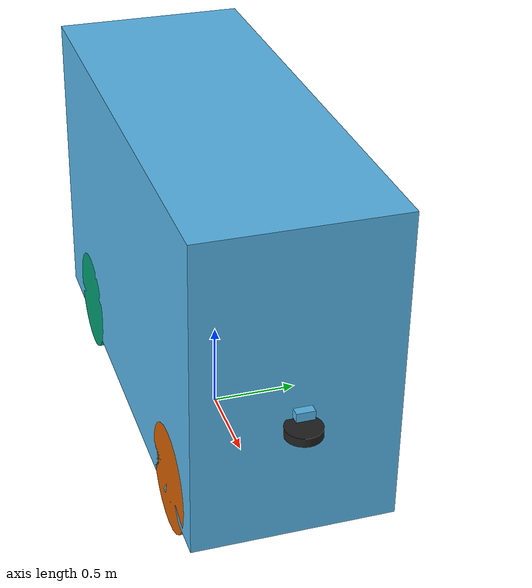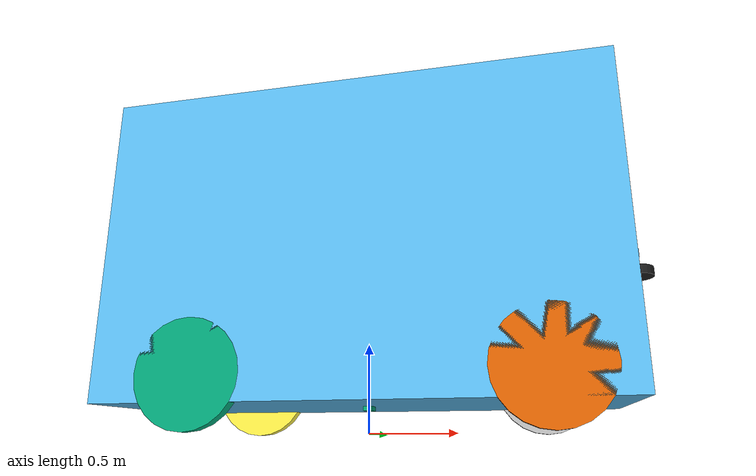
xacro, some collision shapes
<?xml version="1.0"?>
<robot name="robotaksi" xmlns:xacro="http://www.ros.org/wiki/xacro">

    <xacro:include filename="common_properties.xacro" />

    <xacro:property name="base_length" value="2.85" />
    <xacro:property name="base_width" value="1.11" />
    <xacro:property name="base_height" value="1.78" />
    <xacro:property name="base_radius" value="0.3" />
    <xacro:property name="wheel_length" value="0.07" />
    <xacro:property name="wheel_z_offset" value="0.15" />
    <xacro:property name="rear_wheel_x_offset" value="0.865" />
    <xacro:property name="front_wheel_x_offset" value="1.0" />

    <link name="base_footprint" />

    <link name="base_link">
        <visual>
            <geometry>
                <mesh filename="package://robotaksi_autonomous_car/meshes/robotaksi.dae" />
            </geometry>
            <origin xyz="0 0 ${base_height / 2.0}" rpy="0 0 0" />
        </visual>
        <xacro:box_inertia m="250.0" l="${base_length}" w="${base_width}" h="${base_height}"
            xyz="0 0 ${base_height / 2.0}" rpy="${pi / 2.0} 0 ${pi / 2.0}" />
        <collision>
            <geometry>
                <box size="${base_length} ${base_width} ${base_height}" />
            </geometry>
            <origin xyz="0 0 ${base_height / 2.0}" rpy="0 0 0" />
        </collision>
    </link>

    <link name="rear_right_axle">
        <visual>
            <geometry>
                <cylinder radius="${base_radius}" length="${wheel_length}" />
            </geometry>
            <origin xyz="0 0 0" rpy="${pi / 2.0} 0 0" />
        </visual>
        <xacro:cylinder_inertia m="50" r="${base_radius}" l="${wheel_length}"
            xyz="0 0 0" rpy="${pi / 2.0} 0 0" />

        <collision>
            <geometry>
                <cylinder radius="${base_radius}" length="${wheel_length}" />
            </geometry>
            <origin xyz="0 0 0" rpy="${pi / 2.0} 0 0" />
        </collision>
    </link>

    <link name="rear_left_axle">
        <visual>
            <geometry>
                <cylinder radius="${base_radius}" length="${wheel_length}" />
            </geometry>
            <origin xyz="0 0 0" rpy="${pi / 2.0} 0 0" />
        </visual>
        <xacro:cylinder_inertia m="50" r="${base_radius}" l="${wheel_length}"
            xyz="0 0 0" rpy="${pi / 2.0} 0 0" />

        <collision>
            <geometry>
                <cylinder radius="${base_radius}" length="${wheel_length}" />
            </geometry>
            <origin xyz="0 0 0" rpy="${pi / 2.0} 0 0" />
        </collision>
    </link>

    <link name="front_right_steer">
        <inertial>
            <origin rpy="0 0 0" xyz="0.003381 1.5929e-07 0.02162" />
            <mass value="1" />
            <inertia ixx="1.0" ixy="0.0" ixz="0.0" iyy="1.0" iyz="0.0" izz="1.0" />
        </inertial>
    </link>

    <link name="front_right_axle">
        <visual>
            <geometry>
                <cylinder radius="${base_radius}" length="${wheel_length}" />
            </geometry>
            <origin xyz="0 0 0" rpy="${pi / 2.0} 0 0" />
        </visual>
        <xacro:cylinder_inertia m="50" r="${base_radius}" l="${wheel_length}"
            xyz="0 0 0" rpy="${pi / 2.0} 0 0" />

        <collision>
            <geometry>
                <cylinder radius="${base_radius}" length="${wheel_length}" />
            </geometry>
            <origin xyz="0 0 0" rpy="${pi / 2.0} 0 0" />
        </collision>
    </link>

    <link name="front_left_steer">
        <inertial>
            <origin rpy="0 0 0" xyz="0.003381 1.5929e-07 0.02162" />
            <mass value="1" />
            <inertia ixx="1.0" ixy="0.0" ixz="0.0" iyy="1.0" iyz="0.0" izz="1.0" />
        </inertial>
    </link>

    <link name="front_left_axle">
        <visual>
            <geometry>
                <cylinder radius="${base_radius}" length="${wheel_length}" />
            </geometry>
            <origin xyz="0 0 0" rpy="${pi / 2.0} 0 0" />
        </visual>

        <xacro:cylinder_inertia m="50" r="${base_radius}" l="${wheel_length}"
            xyz="0 0 0" rpy="${pi / 2.0} 0 0" />

        <collision>
            <geometry>
                <cylinder radius="${base_radius}" length="${wheel_length}" />
            </geometry>
            <origin xyz="0 0 0" rpy="${pi / 2.0} 0 0" />
        </collision>
    </link>

    <joint name="base_joint" type="fixed">
        <parent link="base_footprint" />
        <child link="base_link" />
        <origin xyz="0 0 ${base_radius-wheel_z_offset}" rpy="0 0 0" />
    </joint>

    <joint name="rear_right_axle_joint" type="continuous">
        <parent link="base_link" />
        <child link="rear_right_axle" />
        <origin
            xyz="${-rear_wheel_x_offset} ${-(base_width / 2.0) + (wheel_length / 2.0)} ${wheel_z_offset}"
            rpy="0 0 0" />
        <axis xyz="0 1 0" />
    </joint>

    <joint name="rear_left_axle_joint" type="continuous">
        <parent link="base_link" />
        <child link="rear_left_axle" />
        <origin
            xyz="${-rear_wheel_x_offset} ${(base_width / 2.0) - (wheel_length / 2.0)} ${wheel_z_offset}"
            rpy="0 0 0" />
        <axis xyz="0 1 0" />
    </joint>

    <joint name="front_right_steer_joint" type="continuous">
        <parent link="base_link" />
        <child link="front_right_steer" />
        <origin
            xyz="${front_wheel_x_offset} ${-(base_width / 2.0) + (wheel_length / 2.0)} ${wheel_z_offset}"
            rpy="0 0 0" />
        <axis xyz="0 0 1" />
    </joint>

    <joint name="front_right_axle_joint" type="continuous">
        <parent link="front_right_steer" />
        <child link="front_right_axle" />
        <origin xyz="0 0 0" rpy="0 0 0" />
        <axis xyz="0 1 0" />
    </joint>

    <joint name="front_left_steer_joint" type="continuous">
        <parent link="base_link" />
        <child link="front_left_steer" />
        <origin
            xyz="${front_wheel_x_offset} ${(base_width / 2.0) - (wheel_length / 2.0)} ${wheel_z_offset}"
            rpy="0 0 0" />
        <axis xyz="0 0 1" />
    </joint>

    <joint name="front_left_axle_joint" type="continuous">
        <parent link="front_left_steer" />
        <child link="front_left_axle" />
        <origin xyz="0 0 0" rpy="0 0 0" />
        <axis xyz="0 1 0" />
    </joint>

    <xacro:include filename="robotaksi_gazebo.xacro" />
    <xacro:include filename="ray.xacro" />
    <xacro:include filename="camera.xacro" />
    <xacro:include filename="depth.xacro" />
    <xacro:include filename="gps.xacro" />
    <xacro:include filename="imu.xacro" />
    <xacro:include filename="mag.xacro" />

</robot>

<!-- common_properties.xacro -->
<robot xmlns:xacro="http://www.ros.org/wiki/xacro">

    <xacro:macro name="box_inertia" params="m l w h xyz rpy">
        <inertial>
            <origin xyz="${xyz}" rpy="${rpy}"/>
            <mass value="${m}"/>

            <inertia ixx="${(m/12) * (h*h + l*l)}" ixy="0" ixz="0"
                     iyy="${(m/12) * (w*w + l*l)}" iyz="0"
                     izz="${(m/12) * (w*w + h*h)}"/>
        </inertial>
    </xacro:macro>

    <xacro:macro name="sphere_inertia" params="m r xyz rpy">
        <inertial>
            <origin xyz="${xyz}" rpy="${rpy}"/>
            <mass value="${m}"/>

            <inertia ixx="${(2*m/5) * (r*r)}" ixy="0" ixz="0"
                     iyy="${(2*m/5) * (r*r)}" iyz="0"
                     izz="${(2*m/5) * (r*r)}"/>
        </inertial>
    </xacro:macro>

    <xacro:macro name="cylinder_inertia" params="m r l xyz rpy">
        <inertial>
            <origin xyz="${xyz}" rpy="${rpy}"/>
            <mass value="${m}"/>

            <inertia ixx="${(m/12) * ((3*r*r) + (l*l))}" ixy="0" ixz="0"
                     iyy="${(m/12) * ((3*r*r) + (l*l))}" iyz="0"
                     izz="${(m/2) * (r*r)}"/>
        </inertial>
    </xacro:macro>
</robot>

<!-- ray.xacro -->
<robot xmlns:xacro="http://www.ros.org/wiki/xacro">

    <link name="base_scan">
        <visual>
            <origin xyz="0 0 0.0" rpy="0 0 0" />
            <geometry>
                <cylinder length="0.05" radius="0.1" />
            </geometry>
        </visual>

        <collision>
            <origin xyz="0 0 0" rpy="0 0 0" />
            <geometry>
                <cylinder length="0.05" radius="0.1" />
            </geometry>
        </collision>

        <inertial>
            <mass value="0.114" />
            <origin xyz="0 0 0" rpy="0 0 0" />
            <inertia ixx="0.001" ixy="0.0" ixz="0.0"
                iyy="0.001" iyz="0.0"
                izz="0.001" />
        </inertial>
    </link>

    <joint name="scan_joint" type="fixed">
        <parent link="base_link" />
        <child link="base_scan" />
        <origin xyz="1.5 0 0.7" rpy="0 0 0" />
    </joint>

    <gazebo reference="base_scan">
        <material>Gazebo/FlatBlack</material>
        <sensor name='base_scan' type='gpu_lidar'>
            <gz_frame_id>base_scan</gz_frame_id>
            <topic>scan</topic>
            <update_rate>100</update_rate>
            <lidar>
                <scan>
                    <horizontal>
                        <samples>640</samples>
                        <resolution>1</resolution>
                        <min_angle>-1.396263</min_angle>
                        <max_angle>1.396263</max_angle>
                    </horizontal>
                    <vertical>
                        <samples>16</samples>
                        <resolution>1</resolution>
                        <min_angle>-0.261799</min_angle>
                        <max_angle>0.261799</max_angle>
                    </vertical>
                </scan>
                <range>
                    <min>0.08</min>
                    <max>10.0</max>
                    <resolution>0.01</resolution>
                </range>
            </lidar>
            <alwaysOn>1</alwaysOn>
            <visualize>true</visualize>
        </sensor>
    </gazebo>

</robot>

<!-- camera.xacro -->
<robot xmlns:xacro="http://www.ros.org/wiki/xacro">

    <link name='camera_link'>
        <visual name='visual'>
            <origin xyz="0 0 0.0" rpy="0 0 0" />
            <geometry>
                <box size="0.05 0.1 0.05" />
            </geometry>
        </visual>

        <collision>
            <origin xyz="0 0 0" rpy="0 0 0" />
            <geometry>
                <box size="0.1 0.1 0.1" />
            </geometry>
        </collision>

        <inertial>
            <mass value="0.1" />
            <origin xyz="0 0 0" rpy="0 0 0" />
            <inertia ixx="0.001" ixy="0.0" ixz="0.0" iyy="0.001" iyz="0.0" izz="0.001" />
        </inertial>
    </link>

    <joint name="camera_joint" type="fixed">
        <parent link="base_link" />
        <child link="camera_link" />
        <origin xyz="1.5 0 0.8" rpy="0 0 0" />
    </joint>

    <gazebo reference="camera_link">
        <sensor name="camera" type="camera">
            <gz_frame_id>camera_link</gz_frame_id>
            <camera>
                <horizontal_fov>1.91986</horizontal_fov>
                <image>
                  <width>672</width>
                  <height>376</height>
                </image>
                <clip>
                  <near>0.3</near>
                  <far>130</far>
                </clip>
              </camera>
              <always_on>1</always_on>
              <update_rate>100</update_rate>
              <visualize>true</visualize>
              <topic>camera</topic>
        </sensor>
    </gazebo>

</robot>

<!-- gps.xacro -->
<robot xmlns:xacro="http://www.ros.org/wiki/xacro">

    <link name='gps_link'>
        <visual name='visual'>
            <origin xyz="0 0 0.0" rpy="0 0 0" />
            <geometry>
                <box size="0.05 0.1 0.05" />
            </geometry>
        </visual>

        <collision>
            <origin xyz="0 0 0" rpy="0 0 0" />
            <geometry>
                <box size="0.1 0.1 0.1" />
            </geometry>
        </collision>

        <inertial>
            <mass value="0.1" />
            <origin xyz="0 0 0" rpy="0 0 0" />
            <inertia ixx="0.001" ixy="0.0" ixz="0.0" iyy="0.001" iyz="0.0" izz="0.001" />
        </inertial>
    </link>

    <joint name="gps_joint" type="fixed">
        <parent link="base_link" />
        <child link="gps_link" />
        <origin xyz="0 0 0" rpy="0 0 0" />
    </joint>

    <gazebo reference="gps_link">
        <sensor name="gps_sensor" type="navsat">
            <!-- ensure the sensor is active (required) -->
            <gz_frame_id>gps_link</gz_frame_id>
            <always_on>1</always_on>
            <update_rate>15</update_rate>
            <topic>gps/fix</topic>
            <gps>
                <position_sensing>
                  <horizontal>
                    <noise type="gaussian">
                      <mean>0.0</mean>
                      <stddev>0.0</stddev>
                    </noise>
                  </horizontal>
                  <vertical>
                    <noise type="gaussian">
                      <mean>0.0</mean>
                      <stddev>0.0</stddev>
                    </noise>
                  </vertical>
                </position_sensing>
              </gps>
          </sensor>
    </gazebo>

</robot>

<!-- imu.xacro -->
<robot xmlns:xacro="http://www.ros.org/wiki/xacro">

    <link name='imu_link'>
        <visual name='visual'>
            <origin xyz="0 0 0.0" rpy="0 0 0" />
            <geometry>
                <box size="0.05 0.1 0.05" />
            </geometry>
        </visual>

        <collision>
            <origin xyz="0 0 0" rpy="0 0 0" />
            <geometry>
                <box size="0.1 0.1 0.1" />
            </geometry>
        </collision>

        <inertial>
            <mass value="0.1" />
            <origin xyz="0 0 0" rpy="0 0 0" />
            <inertia ixx="0.001" ixy="0.0" ixz="0.0" iyy="0.001" iyz="0.0" izz="0.001" />
        </inertial>
    </link>

    <joint name="imu_joint" type="fixed">
        <parent link="base_link" />
        <child link="imu_link" />
        <origin xyz="0 0 0" rpy="0 0 0" />
        <axis xyz="0 0 1" />
    </joint>

    <gazebo reference="imu_link">
        <sensor name="imu_sensor" type="imu">
            <gz_frame_id>imu_link</gz_frame_id>
            <always_on>1</always_on>
            <update_rate>60</update_rate>
            <visualize>true</visualize>
            <topic>imu/data_raw</topic>
            <imu>
                <angular_velocity>
                    <x>
                        <noise type="none">
                        </noise>
                    </x>
                    <y>
                        <noise type="none">
                        </noise>
                    </y>
                    <z>
                        <noise type="none">
                        </noise>
                    </z>
                </angular_velocity>
                <linear_acceleration>
                    <x>
                        <noise type="none">
                        </noise>
                    </x>
                    <y>
                        <noise type="none">
                        </noise>
                    </y>
                    <z>
                        <noise type="none">
                        </noise>
                    </z>
                </linear_acceleration>
            </imu>
        </sensor>
    </gazebo>

</robot>

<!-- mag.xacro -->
<robot xmlns:xacro="http://www.ros.org/wiki/xacro">

    <link name='mag_link'>
        <visual name='visual'>
            <origin xyz="0 0 0.0" rpy="0 0 0" />
            <geometry>
                <box size="0.05 0.1 0.05" />
            </geometry>
        </visual>

        <collision>
            <origin xyz="0 0 0" rpy="0 0 0" />
            <geometry>
                <box size="0.1 0.1 0.1" />
            </geometry>
        </collision>

        <inertial>
            <mass value="0.1" />
            <origin xyz="0 0 0" rpy="0 0 0" />
            <inertia ixx="0.001" ixy="0.0" ixz="0.0" iyy="0.001" iyz="0.0" izz="0.001" />
        </inertial>
    </link>

    <joint name="mag_joint" type="fixed">
        <parent link="base_link" />
        <child link="mag_link" />
        <origin xyz="0 0 0" rpy="0 0 0" />
        <axis xyz="0 0 0" />
    </joint>

    <gazebo reference="mag_link">
        <sensor name="mag_sensor" type="magnetometer">
            <always_on>1</always_on>
            <gz_frame_id>mag_link</gz_frame_id>
            <always_on>1</always_on>
            <update_rate>100</update_rate>
            <visualize>true</visualize>
            <topic>imu/mag</topic>
        </sensor>
    </gazebo>

</robot>
